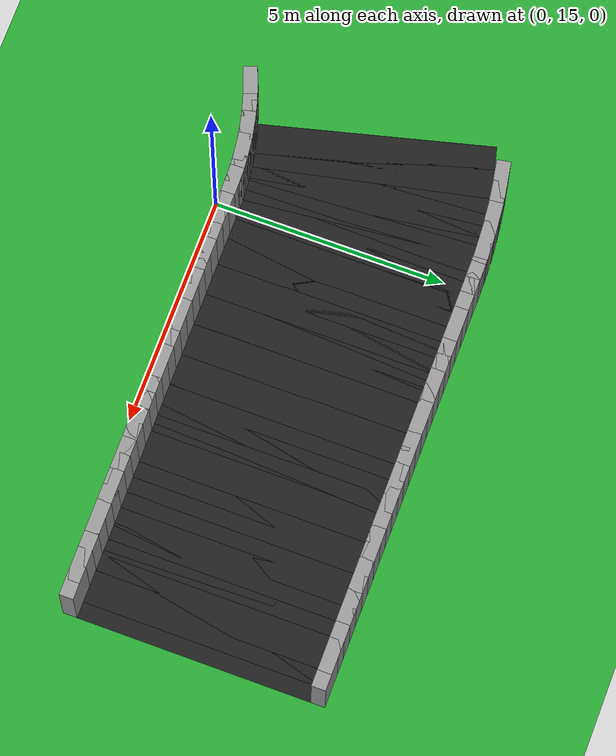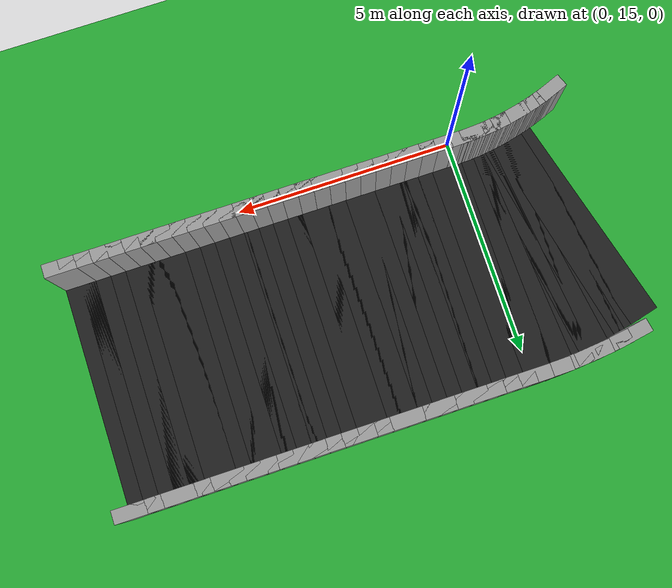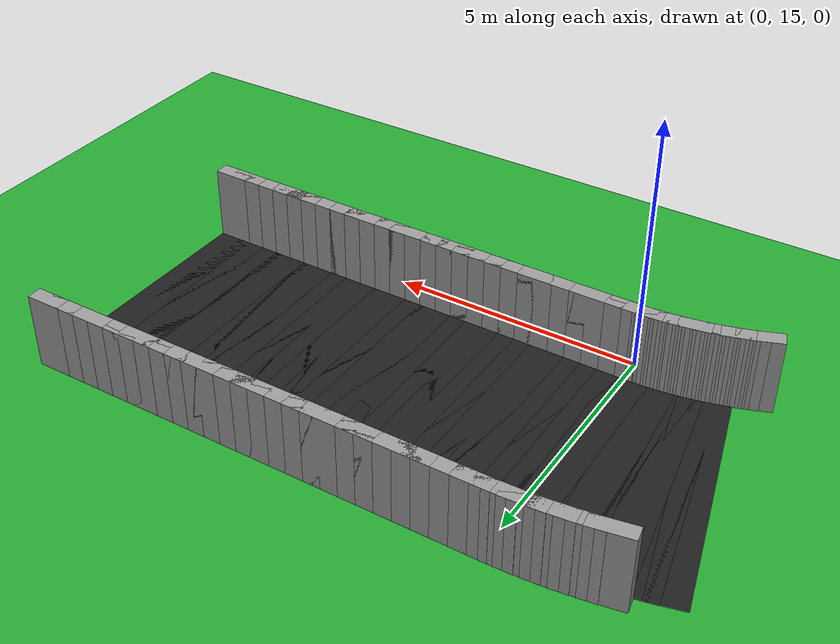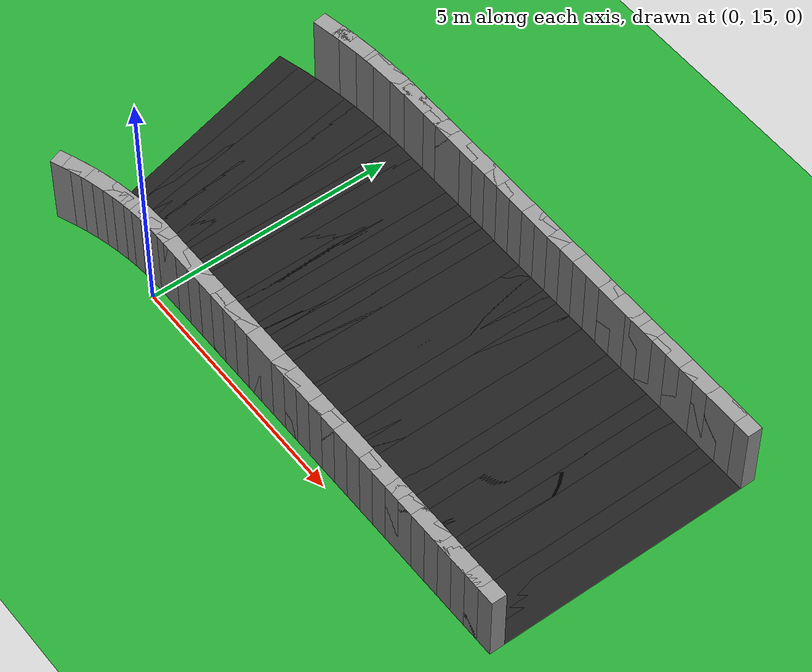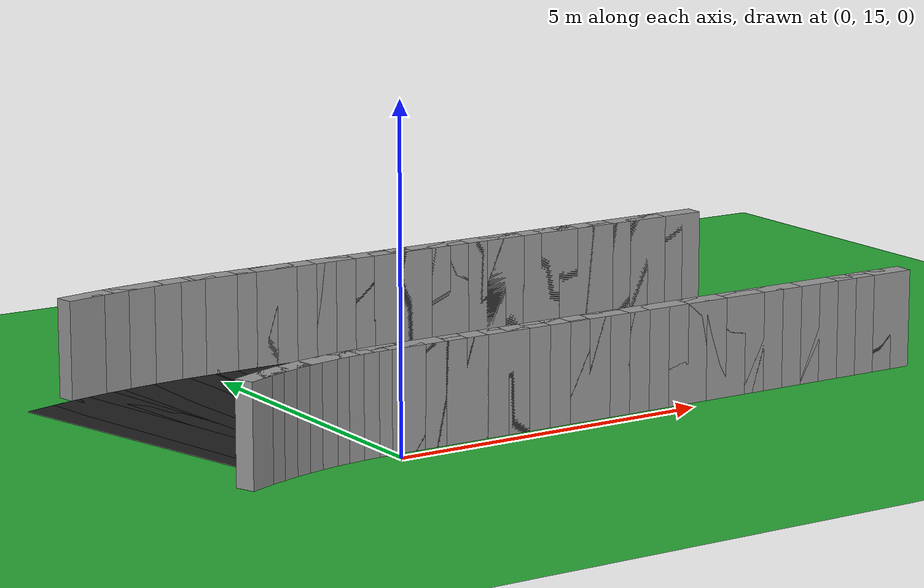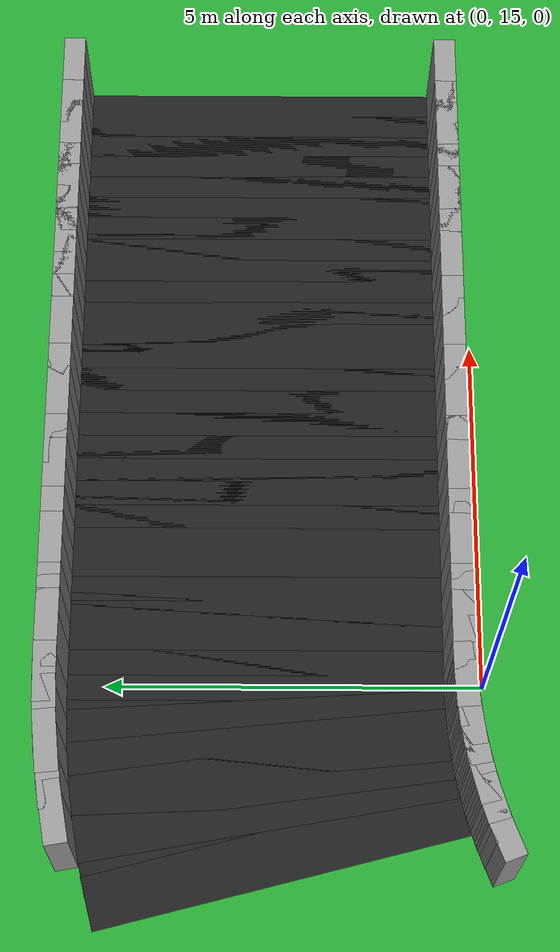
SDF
<sdf version="1.6">
 <world name="loop_stadium">
  <include><uri>model://sun</uri></include>
  <model name="ground_plane">
   <static>true</static>
   <link name="link">
    <collision name="collision">
     <surface><friction><ode><mu>100</mu><mu2>50</mu2></ode></friction></surface>
     <geometry><plane><normal>0 0 1</normal><size>120 120</size></plane></geometry>
    </collision>
    <visual name="visual">
     <geometry><plane><normal>0 0 1</normal><size>120 120</size></plane></geometry>
     <material>
      <script><uri>file://media/materials/scripts/gazebo.material</uri><name>Gazebo/Green</name></script>
     </material>
    </visual>
   </link>
  </model>
  <model name="asphalt_193">
   <static>true</static>
   <pose>8.870 18.001 0.005 0 0 3.14159</pose>
   <link name="link">
    <visual name="visual">
     <geometry><box><size>0.708 5.000 0.010</size></box></geometry>
     <material>
      <script><uri>file://media/materials/scripts/gazebo.material</uri><name>Gazebo/Black</name></script>
     </material>
    </visual>
   </link>
  </model>
  <model name="curbL_193">
   <static>true</static>
   <pose>8.870 15.351 0.750 0 0 3.14159</pose>
   <link name="link">
    <collision name="collision"><geometry><box><size>0.708 0.300 1.500</size></box></geometry></collision>
    <visual name="visual">
     <geometry><box><size>0.708 0.300 1.500</size></box></geometry>
     <material>
      <script><uri>file://media/materials/scripts/gazebo.material</uri><name>Gazebo/Grey</name></script>
     </material>
    </visual>
   </link>
  </model>
  <model name="curbR_193">
   <static>true</static>
   <pose>8.870 20.651 0.750 0 0 3.14159</pose>
   <link name="link">
    <collision name="collision"><geometry><box><size>0.708 0.300 1.500</size></box></geometry></collision>
    <visual name="visual">
     <geometry><box><size>0.708 0.300 1.500</size></box></geometry>
     <material>
      <script><uri>file://media/materials/scripts/gazebo.material</uri><name>Gazebo/Grey</name></script>
     </material>
    </visual>
   </link>
  </model>
  <model name="asphalt_194">
   <static>true</static>
   <pose>8.522 18.001 0.005 0 0 3.14159</pose>
   <link name="link">
    <visual name="visual">
     <geometry><box><size>0.708 5.000 0.010</size></box></geometry>
     <material>
      <script><uri>file://media/materials/scripts/gazebo.material</uri><name>Gazebo/Black</name></script>
     </material>
    </visual>
   </link>
  </model>
  <model name="curbL_194">
   <static>true</static>
   <pose>8.522 15.351 0.750 0 0 3.14159</pose>
   <link name="link">
    <collision name="collision"><geometry><box><size>0.708 0.300 1.500</size></box></geometry></collision>
    <visual name="visual">
     <geometry><box><size>0.708 0.300 1.500</size></box></geometry>
     <material>
      <script><uri>file://media/materials/scripts/gazebo.material</uri><name>Gazebo/Grey</name></script>
     </material>
    </visual>
   </link>
  </model>
  <model name="curbR_194">
   <static>true</static>
   <pose>8.522 20.651 0.750 0 0 3.14159</pose>
   <link name="link">
    <collision name="collision"><geometry><box><size>0.708 0.300 1.500</size></box></geometry></collision>
    <visual name="visual">
     <geometry><box><size>0.708 0.300 1.500</size></box></geometry>
     <material>
      <script><uri>file://media/materials/scripts/gazebo.material</uri><name>Gazebo/Grey</name></script>
     </material>
    </visual>
   </link>
  </model>
  <model name="asphalt_195">
   <static>true</static>
   <pose>8.174 18.001 0.005 0 0 3.14159</pose>
   <link name="link">
    <visual name="visual">
     <geometry><box><size>0.708 5.000 0.010</size></box></geometry>
     <material>
      <script><uri>file://media/materials/scripts/gazebo.material</uri><name>Gazebo/Black</name></script>
     </material>
    </visual>
   </link>
  </model>
  <model name="curbL_195">
   <static>true</static>
   <pose>8.174 15.351 0.750 0 0 3.14159</pose>
   <link name="link">
    <collision name="collision"><geometry><box><size>0.708 0.300 1.500</size></box></geometry></collision>
    <visual name="visual">
     <geometry><box><size>0.708 0.300 1.500</size></box></geometry>
     <material>
      <script><uri>file://media/materials/scripts/gazebo.material</uri><name>Gazebo/Grey</name></script>
     </material>
    </visual>
   </link>
  </model>
  <model name="curbR_195">
   <static>true</static>
   <pose>8.174 20.651 0.750 0 0 3.14159</pose>
   <link name="link">
    <collision name="collision"><geometry><box><size>0.708 0.300 1.500</size></box></geometry></collision>
    <visual name="visual">
     <geometry><box><size>0.708 0.300 1.500</size></box></geometry>
     <material>
      <script><uri>file://media/materials/scripts/gazebo.material</uri><name>Gazebo/Grey</name></script>
     </material>
    </visual>
   </link>
  </model>
  <model name="asphalt_196">
   <static>true</static>
   <pose>7.826 18.001 0.005 0 0 3.14159</pose>
   <link name="link">
    <visual name="visual">
     <geometry><box><size>0.708 5.000 0.010</size></box></geometry>
     <material>
      <script><uri>file://media/materials/scripts/gazebo.material</uri><name>Gazebo/Black</name></script>
     </material>
    </visual>
   </link>
  </model>
  <model name="curbL_196">
   <static>true</static>
   <pose>7.826 15.351 0.750 0 0 3.14159</pose>
   <link name="link">
    <collision name="collision"><geometry><box><size>0.708 0.300 1.500</size></box></geometry></collision>
    <visual name="visual">
     <geometry><box><size>0.708 0.300 1.500</size></box></geometry>
     <material>
      <script><uri>file://media/materials/scripts/gazebo.material</uri><name>Gazebo/Grey</name></script>
     </material>
    </visual>
   </link>
  </model>
  <model name="curbR_196">
   <static>true</static>
   <pose>7.826 20.651 0.750 0 0 3.14159</pose>
   <link name="link">
    <collision name="collision"><geometry><box><size>0.708 0.300 1.500</size></box></geometry></collision>
    <visual name="visual">
     <geometry><box><size>0.708 0.300 1.500</size></box></geometry>
     <material>
      <script><uri>file://media/materials/scripts/gazebo.material</uri><name>Gazebo/Grey</name></script>
     </material>
    </visual>
   </link>
  </model>
  <model name="asphalt_197">
   <static>true</static>
   <pose>7.478 18.001 0.005 0 0 3.14159</pose>
   <link name="link">
    <visual name="visual">
     <geometry><box><size>0.708 5.000 0.010</size></box></geometry>
     <material>
      <script><uri>file://media/materials/scripts/gazebo.material</uri><name>Gazebo/Black</name></script>
     </material>
    </visual>
   </link>
  </model>
  <model name="curbL_197">
   <static>true</static>
   <pose>7.478 15.351 0.750 0 0 3.14159</pose>
   <link name="link">
    <collision name="collision"><geometry><box><size>0.708 0.300 1.500</size></box></geometry></collision>
    <visual name="visual">
     <geometry><box><size>0.708 0.300 1.500</size></box></geometry>
     <material>
      <script><uri>file://media/materials/scripts/gazebo.material</uri><name>Gazebo/Grey</name></script>
     </material>
    </visual>
   </link>
  </model>
  <model name="curbR_197">
   <static>true</static>
   <pose>7.478 20.651 0.750 0 0 3.14159</pose>
   <link name="link">
    <collision name="collision"><geometry><box><size>0.708 0.300 1.500</size></box></geometry></collision>
    <visual name="visual">
     <geometry><box><size>0.708 0.300 1.500</size></box></geometry>
     <material>
      <script><uri>file://media/materials/scripts/gazebo.material</uri><name>Gazebo/Grey</name></script>
     </material>
    </visual>
   </link>
  </model>
  <model name="asphalt_198">
   <static>true</static>
   <pose>7.130 18.001 0.005 0 0 3.14159</pose>
   <link name="link">
    <visual name="visual">
     <geometry><box><size>0.708 5.000 0.010</size></box></geometry>
     <material>
      <script><uri>file://media/materials/scripts/gazebo.material</uri><name>Gazebo/Black</name></script>
     </material>
    </visual>
   </link>
  </model>
  <model name="curbL_198">
   <static>true</static>
   <pose>7.130 15.351 0.750 0 0 3.14159</pose>
   <link name="link">
    <collision name="collision"><geometry><box><size>0.708 0.300 1.500</size></box></geometry></collision>
    <visual name="visual">
     <geometry><box><size>0.708 0.300 1.500</size></box></geometry>
     <material>
      <script><uri>file://media/materials/scripts/gazebo.material</uri><name>Gazebo/Grey</name></script>
     </material>
    </visual>
   </link>
  </model>
  <model name="curbR_198">
   <static>true</static>
   <pose>7.130 20.651 0.750 0 0 3.14159</pose>
   <link name="link">
    <collision name="collision"><geometry><box><size>0.708 0.300 1.500</size></box></geometry></collision>
    <visual name="visual">
     <geometry><box><size>0.708 0.300 1.500</size></box></geometry>
     <material>
      <script><uri>file://media/materials/scripts/gazebo.material</uri><name>Gazebo/Grey</name></script>
     </material>
    </visual>
   </link>
  </model>
  <model name="asphalt_199">
   <static>true</static>
   <pose>6.783 18.001 0.005 0 0 3.14159</pose>
   <link name="link">
    <visual name="visual">
     <geometry><box><size>0.708 5.000 0.010</size></box></geometry>
     <material>
      <script><uri>file://media/materials/scripts/gazebo.material</uri><name>Gazebo/Black</name></script>
     </material>
    </visual>
   </link>
  </model>
  <model name="curbL_199">
   <static>true</static>
   <pose>6.783 15.351 0.750 0 0 3.14159</pose>
   <link name="link">
    <collision name="collision"><geometry><box><size>0.708 0.300 1.500</size></box></geometry></collision>
    <visual name="visual">
     <geometry><box><size>0.708 0.300 1.500</size></box></geometry>
     <material>
      <script><uri>file://media/materials/scripts/gazebo.material</uri><name>Gazebo/Grey</name></script>
     </material>
    </visual>
   </link>
  </model>
  <model name="curbR_199">
   <static>true</static>
   <pose>6.783 20.651 0.750 0 0 3.14159</pose>
   <link name="link">
    <collision name="collision"><geometry><box><size>0.708 0.300 1.500</size></box></geometry></collision>
    <visual name="visual">
     <geometry><box><size>0.708 0.300 1.500</size></box></geometry>
     <material>
      <script><uri>file://media/materials/scripts/gazebo.material</uri><name>Gazebo/Grey</name></script>
     </material>
    </visual>
   </link>
  </model>
  <model name="asphalt_200">
   <static>true</static>
   <pose>6.435 18.001 0.005 0 0 3.14159</pose>
   <link name="link">
    <visual name="visual">
     <geometry><box><size>0.708 5.000 0.010</size></box></geometry>
     <material>
      <script><uri>file://media/materials/scripts/gazebo.material</uri><name>Gazebo/Black</name></script>
     </material>
    </visual>
   </link>
  </model>
  <model name="curbL_200">
   <static>true</static>
   <pose>6.435 15.351 0.750 0 0 3.14159</pose>
   <link name="link">
    <collision name="collision"><geometry><box><size>0.708 0.300 1.500</size></box></geometry></collision>
    <visual name="visual">
     <geometry><box><size>0.708 0.300 1.500</size></box></geometry>
     <material>
      <script><uri>file://media/materials/scripts/gazebo.material</uri><name>Gazebo/Grey</name></script>
     </material>
    </visual>
   </link>
  </model>
  <model name="curbR_200">
   <static>true</static>
   <pose>6.435 20.651 0.750 0 0 3.14159</pose>
   <link name="link">
    <collision name="collision"><geometry><box><size>0.708 0.300 1.500</size></box></geometry></collision>
    <visual name="visual">
     <geometry><box><size>0.708 0.300 1.500</size></box></geometry>
     <material>
      <script><uri>file://media/materials/scripts/gazebo.material</uri><name>Gazebo/Grey</name></script>
     </material>
    </visual>
   </link>
  </model>
  <model name="asphalt_201">
   <static>true</static>
   <pose>6.087 18.001 0.005 0 0 3.14159</pose>
   <link name="link">
    <visual name="visual">
     <geometry><box><size>0.708 5.000 0.010</size></box></geometry>
     <material>
      <script><uri>file://media/materials/scripts/gazebo.material</uri><name>Gazebo/Black</name></script>
     </material>
    </visual>
   </link>
  </model>
  <model name="curbL_201">
   <static>true</static>
   <pose>6.087 15.351 0.750 0 0 3.14159</pose>
   <link name="link">
    <collision name="collision"><geometry><box><size>0.708 0.300 1.500</size></box></geometry></collision>
    <visual name="visual">
     <geometry><box><size>0.708 0.300 1.500</size></box></geometry>
     <material>
      <script><uri>file://media/materials/scripts/gazebo.material</uri><name>Gazebo/Grey</name></script>
     </material>
    </visual>
   </link>
  </model>
  <model name="curbR_201">
   <static>true</static>
   <pose>6.087 20.651 0.750 0 0 3.14159</pose>
   <link name="link">
    <collision name="collision"><geometry><box><size>0.708 0.300 1.500</size></box></geometry></collision>
    <visual name="visual">
     <geometry><box><size>0.708 0.300 1.500</size></box></geometry>
     <material>
      <script><uri>file://media/materials/scripts/gazebo.material</uri><name>Gazebo/Grey</name></script>
     </material>
    </visual>
   </link>
  </model>
  <model name="asphalt_202">
   <static>true</static>
   <pose>5.739 18.001 0.005 0 0 3.14159</pose>
   <link name="link">
    <visual name="visual">
     <geometry><box><size>0.708 5.000 0.010</size></box></geometry>
     <material>
      <script><uri>file://media/materials/scripts/gazebo.material</uri><name>Gazebo/Black</name></script>
     </material>
    </visual>
   </link>
  </model>
  <model name="curbL_202">
   <static>true</static>
   <pose>5.739 15.351 0.750 0 0 3.14159</pose>
   <link name="link">
    <collision name="collision"><geometry><box><size>0.708 0.300 1.500</size></box></geometry></collision>
    <visual name="visual">
     <geometry><box><size>0.708 0.300 1.500</size></box></geometry>
     <material>
      <script><uri>file://media/materials/scripts/gazebo.material</uri><name>Gazebo/Grey</name></script>
     </material>
    </visual>
   </link>
  </model>
  <model name="curbR_202">
   <static>true</static>
   <pose>5.739 20.651 0.750 0 0 3.14159</pose>
   <link name="link">
    <collision name="collision"><geometry><box><size>0.708 0.300 1.500</size></box></geometry></collision>
    <visual name="visual">
     <geometry><box><size>0.708 0.300 1.500</size></box></geometry>
     <material>
      <script><uri>file://media/materials/scripts/gazebo.material</uri><name>Gazebo/Grey</name></script>
     </material>
    </visual>
   </link>
  </model>
  <model name="asphalt_203">
   <static>true</static>
   <pose>5.391 18.001 0.005 0 0 3.14159</pose>
   <link name="link">
    <visual name="visual">
     <geometry><box><size>0.708 5.000 0.010</size></box></geometry>
     <material>
      <script><uri>file://media/materials/scripts/gazebo.material</uri><name>Gazebo/Black</name></script>
     </material>
    </visual>
   </link>
  </model>
  <model name="curbL_203">
   <static>true</static>
   <pose>5.391 15.351 0.750 0 0 3.14159</pose>
   <link name="link">
    <collision name="collision"><geometry><box><size>0.708 0.300 1.500</size></box></geometry></collision>
    <visual name="visual">
     <geometry><box><size>0.708 0.300 1.500</size></box></geometry>
     <material>
      <script><uri>file://media/materials/scripts/gazebo.material</uri><name>Gazebo/Grey</name></script>
     </material>
    </visual>
   </link>
  </model>
  <model name="curbR_203">
   <static>true</static>
   <pose>5.391 20.651 0.750 0 0 3.14159</pose>
   <link name="link">
    <collision name="collision"><geometry><box><size>0.708 0.300 1.500</size></box></geometry></collision>
    <visual name="visual">
     <geometry><box><size>0.708 0.300 1.500</size></box></geometry>
     <material>
      <script><uri>file://media/materials/scripts/gazebo.material</uri><name>Gazebo/Grey</name></script>
     </material>
    </visual>
   </link>
  </model>
  <model name="asphalt_204">
   <static>true</static>
   <pose>5.043 18.001 0.005 0 0 3.14159</pose>
   <link name="link">
    <visual name="visual">
     <geometry><box><size>0.708 5.000 0.010</size></box></geometry>
     <material>
      <script><uri>file://media/materials/scripts/gazebo.material</uri><name>Gazebo/Black</name></script>
     </material>
    </visual>
   </link>
  </model>
  <model name="curbL_204">
   <static>true</static>
   <pose>5.043 15.351 0.750 0 0 3.14159</pose>
   <link name="link">
    <collision name="collision"><geometry><box><size>0.708 0.300 1.500</size></box></geometry></collision>
    <visual name="visual">
     <geometry><box><size>0.708 0.300 1.500</size></box></geometry>
     <material>
      <script><uri>file://media/materials/scripts/gazebo.material</uri><name>Gazebo/Grey</name></script>
     </material>
    </visual>
   </link>
  </model>
  <model name="curbR_204">
   <static>true</static>
   <pose>5.043 20.651 0.750 0 0 3.14159</pose>
   <link name="link">
    <collision name="collision"><geometry><box><size>0.708 0.300 1.500</size></box></geometry></collision>
    <visual name="visual">
     <geometry><box><size>0.708 0.300 1.500</size></box></geometry>
     <material>
      <script><uri>file://media/materials/scripts/gazebo.material</uri><name>Gazebo/Grey</name></script>
     </material>
    </visual>
   </link>
  </model>
  <model name="asphalt_205">
   <static>true</static>
   <pose>4.696 18.001 0.005 0 0 3.14159</pose>
   <link name="link">
    <visual name="visual">
     <geometry><box><size>0.708 5.000 0.010</size></box></geometry>
     <material>
      <script><uri>file://media/materials/scripts/gazebo.material</uri><name>Gazebo/Black</name></script>
     </material>
    </visual>
   </link>
  </model>
  <model name="curbL_205">
   <static>true</static>
   <pose>4.696 15.351 0.750 0 0 3.14159</pose>
   <link name="link">
    <collision name="collision"><geometry><box><size>0.708 0.300 1.500</size></box></geometry></collision>
    <visual name="visual">
     <geometry><box><size>0.708 0.300 1.500</size></box></geometry>
     <material>
      <script><uri>file://media/materials/scripts/gazebo.material</uri><name>Gazebo/Grey</name></script>
     </material>
    </visual>
   </link>
  </model>
  <model name="curbR_205">
   <static>true</static>
   <pose>4.696 20.651 0.750 0 0 3.14159</pose>
   <link name="link">
    <collision name="collision"><geometry><box><size>0.708 0.300 1.500</size></box></geometry></collision>
    <visual name="visual">
     <geometry><box><size>0.708 0.300 1.500</size></box></geometry>
     <material>
      <script><uri>file://media/materials/scripts/gazebo.material</uri><name>Gazebo/Grey</name></script>
     </material>
    </visual>
   </link>
  </model>
  <model name="asphalt_206">
   <static>true</static>
   <pose>4.348 18.001 0.005 0 0 3.14159</pose>
   <link name="link">
    <visual name="visual">
     <geometry><box><size>0.708 5.000 0.010</size></box></geometry>
     <material>
      <script><uri>file://media/materials/scripts/gazebo.material</uri><name>Gazebo/Black</name></script>
     </material>
    </visual>
   </link>
  </model>
  <model name="curbL_206">
   <static>true</static>
   <pose>4.348 15.351 0.750 0 0 3.14159</pose>
   <link name="link">
    <collision name="collision"><geometry><box><size>0.708 0.300 1.500</size></box></geometry></collision>
    <visual name="visual">
     <geometry><box><size>0.708 0.300 1.500</size></box></geometry>
     <material>
      <script><uri>file://media/materials/scripts/gazebo.material</uri><name>Gazebo/Grey</name></script>
     </material>
    </visual>
   </link>
  </model>
  <model name="curbR_206">
   <static>true</static>
   <pose>4.348 20.651 0.750 0 0 3.14159</pose>
   <link name="link">
    <collision name="collision"><geometry><box><size>0.708 0.300 1.500</size></box></geometry></collision>
    <visual name="visual">
     <geometry><box><size>0.708 0.300 1.500</size></box></geometry>
     <material>
      <script><uri>file://media/materials/scripts/gazebo.material</uri><name>Gazebo/Grey</name></script>
     </material>
    </visual>
   </link>
  </model>
  <model name="asphalt_207">
   <static>true</static>
   <pose>4.000 18.001 0.005 0 0 3.14159</pose>
   <link name="link">
    <visual name="visual">
     <geometry><box><size>0.708 5.000 0.010</size></box></geometry>
     <material>
      <script><uri>file://media/materials/scripts/gazebo.material</uri><name>Gazebo/Black</name></script>
     </material>
    </visual>
   </link>
  </model>
  <model name="curbL_207">
   <static>true</static>
   <pose>4.000 15.351 0.750 0 0 3.14159</pose>
   <link name="link">
    <collision name="collision"><geometry><box><size>0.708 0.300 1.500</size></box></geometry></collision>
    <visual name="visual">
     <geometry><box><size>0.708 0.300 1.500</size></box></geometry>
     <material>
      <script><uri>file://media/materials/scripts/gazebo.material</uri><name>Gazebo/Grey</name></script>
     </material>
    </visual>
   </link>
  </model>
  <model name="curbR_207">
   <static>true</static>
   <pose>4.000 20.651 0.750 0 0 3.14159</pose>
   <link name="link">
    <collision name="collision"><geometry><box><size>0.708 0.300 1.500</size></box></geometry></collision>
    <visual name="visual">
     <geometry><box><size>0.708 0.300 1.500</size></box></geometry>
     <material>
      <script><uri>file://media/materials/scripts/gazebo.material</uri><name>Gazebo/Grey</name></script>
     </material>
    </visual>
   </link>
  </model>
  <model name="asphalt_208">
   <static>true</static>
   <pose>3.652 18.001 0.005 0 0 3.14159</pose>
   <link name="link">
    <visual name="visual">
     <geometry><box><size>0.708 5.000 0.010</size></box></geometry>
     <material>
      <script><uri>file://media/materials/scripts/gazebo.material</uri><name>Gazebo/Black</name></script>
     </material>
    </visual>
   </link>
  </model>
  <model name="curbL_208">
   <static>true</static>
   <pose>3.652 15.351 0.750 0 0 3.14159</pose>
   <link name="link">
    <collision name="collision"><geometry><box><size>0.708 0.300 1.500</size></box></geometry></collision>
    <visual name="visual">
     <geometry><box><size>0.708 0.300 1.500</size></box></geometry>
     <material>
      <script><uri>file://media/materials/scripts/gazebo.material</uri><name>Gazebo/Grey</name></script>
     </material>
    </visual>
   </link>
  </model>
  <model name="curbR_208">
   <static>true</static>
   <pose>3.652 20.651 0.750 0 0 3.14159</pose>
   <link name="link">
    <collision name="collision"><geometry><box><size>0.708 0.300 1.500</size></box></geometry></collision>
    <visual name="visual">
     <geometry><box><size>0.708 0.300 1.500</size></box></geometry>
     <material>
      <script><uri>file://media/materials/scripts/gazebo.material</uri><name>Gazebo/Grey</name></script>
     </material>
    </visual>
   </link>
  </model>
  <model name="asphalt_209">
   <static>true</static>
   <pose>3.304 18.001 0.005 0 0 3.14159</pose>
   <link name="link">
    <visual name="visual">
     <geometry><box><size>0.708 5.000 0.010</size></box></geometry>
     <material>
      <script><uri>file://media/materials/scripts/gazebo.material</uri><name>Gazebo/Black</name></script>
     </material>
    </visual>
   </link>
  </model>
  <model name="curbL_209">
   <static>true</static>
   <pose>3.304 15.351 0.750 0 0 3.14159</pose>
   <link name="link">
    <collision name="collision"><geometry><box><size>0.708 0.300 1.500</size></box></geometry></collision>
    <visual name="visual">
     <geometry><box><size>0.708 0.300 1.500</size></box></geometry>
     <material>
      <script><uri>file://media/materials/scripts/gazebo.material</uri><name>Gazebo/Grey</name></script>
     </material>
    </visual>
   </link>
  </model>
  <model name="curbR_209">
   <static>true</static>
   <pose>3.304 20.651 0.750 0 0 3.14159</pose>
   <link name="link">
    <collision name="collision"><geometry><box><size>0.708 0.300 1.500</size></box></geometry></collision>
    <visual name="visual">
     <geometry><box><size>0.708 0.300 1.500</size></box></geometry>
     <material>
      <script><uri>file://media/materials/scripts/gazebo.material</uri><name>Gazebo/Grey</name></script>
     </material>
    </visual>
   </link>
  </model>
  <model name="asphalt_210">
   <static>true</static>
   <pose>2.957 18.001 0.005 0 0 3.14159</pose>
   <link name="link">
    <visual name="visual">
     <geometry><box><size>0.708 5.000 0.010</size></box></geometry>
     <material>
      <script><uri>file://media/materials/scripts/gazebo.material</uri><name>Gazebo/Black</name></script>
     </material>
    </visual>
   </link>
  </model>
  <model name="curbL_210">
   <static>true</static>
   <pose>2.957 15.351 0.750 0 0 3.14159</pose>
   <link name="link">
    <collision name="collision"><geometry><box><size>0.708 0.300 1.500</size></box></geometry></collision>
    <visual name="visual">
     <geometry><box><size>0.708 0.300 1.500</size></box></geometry>
     <material>
      <script><uri>file://media/materials/scripts/gazebo.material</uri><name>Gazebo/Grey</name></script>
     </material>
    </visual>
   </link>
  </model>
  <model name="curbR_210">
   <static>true</static>
   <pose>2.957 20.651 0.750 0 0 3.14159</pose>
   <link name="link">
    <collision name="collision"><geometry><box><size>0.708 0.300 1.500</size></box></geometry></collision>
    <visual name="visual">
     <geometry><box><size>0.708 0.300 1.500</size></box></geometry>
     <material>
      <script><uri>file://media/materials/scripts/gazebo.material</uri><name>Gazebo/Grey</name></script>
     </material>
    </visual>
   </link>
  </model>
  <model name="asphalt_211">
   <static>true</static>
   <pose>2.609 18.001 0.005 0 0 3.14159</pose>
   <link name="link">
    <visual name="visual">
     <geometry><box><size>0.708 5.000 0.010</size></box></geometry>
     <material>
      <script><uri>file://media/materials/scripts/gazebo.material</uri><name>Gazebo/Black</name></script>
     </material>
    </visual>
   </link>
  </model>
  <model name="curbL_211">
   <static>true</static>
   <pose>2.609 15.351 0.750 0 0 3.14159</pose>
   <link name="link">
    <collision name="collision"><geometry><box><size>0.708 0.300 1.500</size></box></geometry></collision>
    <visual name="visual">
     <geometry><box><size>0.708 0.300 1.500</size></box></geometry>
     <material>
      <script><uri>file://media/materials/scripts/gazebo.material</uri><name>Gazebo/Grey</name></script>
     </material>
    </visual>
   </link>
  </model>
  <model name="curbR_211">
   <static>true</static>
   <pose>2.609 20.651 0.750 0 0 3.14159</pose>
   <link name="link">
    <collision name="collision"><geometry><box><size>0.708 0.300 1.500</size></box></geometry></collision>
    <visual name="visual">
     <geometry><box><size>0.708 0.300 1.500</size></box></geometry>
     <material>
      <script><uri>file://media/materials/scripts/gazebo.material</uri><name>Gazebo/Grey</name></script>
     </material>
    </visual>
   </link>
  </model>
  <model name="asphalt_212">
   <static>true</static>
   <pose>2.261 18.001 0.005 0 0 3.14159</pose>
   <link name="link">
    <visual name="visual">
     <geometry><box><size>0.708 5.000 0.010</size></box></geometry>
     <material>
      <script><uri>file://media/materials/scripts/gazebo.material</uri><name>Gazebo/Black</name></script>
     </material>
    </visual>
   </link>
  </model>
  <model name="curbL_212">
   <static>true</static>
   <pose>2.261 15.351 0.750 0 0 3.14159</pose>
   <link name="link">
    <collision name="collision"><geometry><box><size>0.708 0.300 1.500</size></box></geometry></collision>
    <visual name="visual">
     <geometry><box><size>0.708 0.300 1.500</size></box></geometry>
     <material>
      <script><uri>file://media/materials/scripts/gazebo.material</uri><name>Gazebo/Grey</name></script>
     </material>
    </visual>
   </link>
  </model>
  <model name="curbR_212">
   <static>true</static>
   <pose>2.261 20.651 0.750 0 0 3.14159</pose>
   <link name="link">
    <collision name="collision"><geometry><box><size>0.708 0.300 1.500</size></box></geometry></collision>
    <visual name="visual">
     <geometry><box><size>0.708 0.300 1.500</size></box></geometry>
     <material>
      <script><uri>file://media/materials/scripts/gazebo.material</uri><name>Gazebo/Grey</name></script>
     </material>
    </visual>
   </link>
  </model>
  <model name="asphalt_213">
   <static>true</static>
   <pose>1.913 18.001 0.005 0 0 3.14159</pose>
   <link name="link">
    <visual name="visual">
     <geometry><box><size>0.708 5.000 0.010</size></box></geometry>
     <material>
      <script><uri>file://media/materials/scripts/gazebo.material</uri><name>Gazebo/Black</name></script>
     </material>
    </visual>
   </link>
  </model>
  <model name="curbL_213">
   <static>true</static>
   <pose>1.913 15.351 0.750 0 0 3.14159</pose>
   <link name="link">
    <collision name="collision"><geometry><box><size>0.708 0.300 1.500</size></box></geometry></collision>
    <visual name="visual">
     <geometry><box><size>0.708 0.300 1.500</size></box></geometry>
     <material>
      <script><uri>file://media/materials/scripts/gazebo.material</uri><name>Gazebo/Grey</name></script>
     </material>
    </visual>
   </link>
  </model>
  <model name="curbR_213">
   <static>true</static>
   <pose>1.913 20.651 0.750 0 0 3.14159</pose>
   <link name="link">
    <collision name="collision"><geometry><box><size>0.708 0.300 1.500</size></box></geometry></collision>
    <visual name="visual">
     <geometry><box><size>0.708 0.300 1.500</size></box></geometry>
     <material>
      <script><uri>file://media/materials/scripts/gazebo.material</uri><name>Gazebo/Grey</name></script>
     </material>
    </visual>
   </link>
  </model>
  <model name="asphalt_214">
   <static>true</static>
   <pose>1.565 18.001 0.005 0 0 3.14159</pose>
   <link name="link">
    <visual name="visual">
     <geometry><box><size>0.708 5.000 0.010</size></box></geometry>
     <material>
      <script><uri>file://media/materials/scripts/gazebo.material</uri><name>Gazebo/Black</name></script>
     </material>
    </visual>
   </link>
  </model>
  <model name="curbL_214">
   <static>true</static>
   <pose>1.565 15.351 0.750 0 0 3.14159</pose>
   <link name="link">
    <collision name="collision"><geometry><box><size>0.708 0.300 1.500</size></box></geometry></collision>
    <visual name="visual">
     <geometry><box><size>0.708 0.300 1.500</size></box></geometry>
     <material>
      <script><uri>file://media/materials/scripts/gazebo.material</uri><name>Gazebo/Grey</name></script>
     </material>
    </visual>
   </link>
  </model>
  <model name="curbR_214">
   <static>true</static>
   <pose>1.565 20.651 0.750 0 0 3.14159</pose>
   <link name="link">
    <collision name="collision"><geometry><box><size>0.708 0.300 1.500</size></box></geometry></collision>
    <visual name="visual">
     <geometry><box><size>0.708 0.300 1.500</size></box></geometry>
     <material>
      <script><uri>file://media/materials/scripts/gazebo.material</uri><name>Gazebo/Grey</name></script>
     </material>
    </visual>
   </link>
  </model>
  <model name="asphalt_215">
   <static>true</static>
   <pose>1.217 18.001 0.005 0 0 3.14159</pose>
   <link name="link">
    <visual name="visual">
     <geometry><box><size>0.708 5.000 0.010</size></box></geometry>
     <material>
      <script><uri>file://media/materials/scripts/gazebo.material</uri><name>Gazebo/Black</name></script>
     </material>
    </visual>
   </link>
  </model>
  <model name="curbL_215">
   <static>true</static>
   <pose>1.217 15.351 0.750 0 0 3.14159</pose>
   <link name="link">
    <collision name="collision"><geometry><box><size>0.708 0.300 1.500</size></box></geometry></collision>
    <visual name="visual">
     <geometry><box><size>0.708 0.300 1.500</size></box></geometry>
     <material>
      <script><uri>file://media/materials/scripts/gazebo.material</uri><name>Gazebo/Grey</name></script>
     </material>
    </visual>
   </link>
  </model>
  <model name="curbR_215">
   <static>true</static>
   <pose>1.217 20.651 0.750 0 0 3.14159</pose>
   <link name="link">
    <collision name="collision"><geometry><box><size>0.708 0.300 1.500</size></box></geometry></collision>
    <visual name="visual">
     <geometry><box><size>0.708 0.300 1.500</size></box></geometry>
     <material>
      <script><uri>file://media/materials/scripts/gazebo.material</uri><name>Gazebo/Grey</name></script>
     </material>
    </visual>
   </link>
  </model>
  <model name="asphalt_216">
   <static>true</static>
   <pose>0.870 18.001 0.005 0 0 3.14159</pose>
   <link name="link">
    <visual name="visual">
     <geometry><box><size>0.708 5.000 0.010</size></box></geometry>
     <material>
      <script><uri>file://media/materials/scripts/gazebo.material</uri><name>Gazebo/Black</name></script>
     </material>
    </visual>
   </link>
  </model>
  <model name="curbL_216">
   <static>true</static>
   <pose>0.870 15.351 0.750 0 0 3.14159</pose>
   <link name="link">
    <collision name="collision"><geometry><box><size>0.708 0.300 1.500</size></box></geometry></collision>
    <visual name="visual">
     <geometry><box><size>0.708 0.300 1.500</size></box></geometry>
     <material>
      <script><uri>file://media/materials/scripts/gazebo.material</uri><name>Gazebo/Grey</name></script>
     </material>
    </visual>
   </link>
  </model>
  <model name="curbR_216">
   <static>true</static>
   <pose>0.870 20.651 0.750 0 0 3.14159</pose>
   <link name="link">
    <collision name="collision"><geometry><box><size>0.708 0.300 1.500</size></box></geometry></collision>
    <visual name="visual">
     <geometry><box><size>0.708 0.300 1.500</size></box></geometry>
     <material>
      <script><uri>file://media/materials/scripts/gazebo.material</uri><name>Gazebo/Grey</name></script>
     </material>
    </visual>
   </link>
  </model>
  <model name="asphalt_217">
   <static>true</static>
   <pose>0.522 18.001 0.005 0 0 3.14159</pose>
   <link name="link">
    <visual name="visual">
     <geometry><box><size>0.708 5.000 0.010</size></box></geometry>
     <material>
      <script><uri>file://media/materials/scripts/gazebo.material</uri><name>Gazebo/Black</name></script>
     </material>
    </visual>
   </link>
  </model>
  <model name="curbL_217">
   <static>true</static>
   <pose>0.522 15.351 0.750 0 0 3.14159</pose>
   <link name="link">
    <collision name="collision"><geometry><box><size>0.708 0.300 1.500</size></box></geometry></collision>
    <visual name="visual">
     <geometry><box><size>0.708 0.300 1.500</size></box></geometry>
     <material>
      <script><uri>file://media/materials/scripts/gazebo.material</uri><name>Gazebo/Grey</name></script>
     </material>
    </visual>
   </link>
  </model>
  <model name="curbR_217">
   <static>true</static>
   <pose>0.522 20.651 0.750 0 0 3.14159</pose>
   <link name="link">
    <collision name="collision"><geometry><box><size>0.708 0.300 1.500</size></box></geometry></collision>
    <visual name="visual">
     <geometry><box><size>0.708 0.300 1.500</size></box></geometry>
     <material>
      <script><uri>file://media/materials/scripts/gazebo.material</uri><name>Gazebo/Grey</name></script>
     </material>
    </visual>
   </link>
  </model>
  <model name="asphalt_218">
   <static>true</static>
   <pose>0.174 18.001 0.005 0 0 3.14159</pose>
   <link name="link">
    <visual name="visual">
     <geometry><box><size>0.708 5.000 0.010</size></box></geometry>
     <material>
      <script><uri>file://media/materials/scripts/gazebo.material</uri><name>Gazebo/Black</name></script>
     </material>
    </visual>
   </link>
  </model>
  <model name="curbL_218">
   <static>true</static>
   <pose>0.174 15.351 0.750 0 0 3.14159</pose>
   <link name="link">
    <collision name="collision"><geometry><box><size>0.708 0.300 1.500</size></box></geometry></collision>
    <visual name="visual">
     <geometry><box><size>0.708 0.300 1.500</size></box></geometry>
     <material>
      <script><uri>file://media/materials/scripts/gazebo.material</uri><name>Gazebo/Grey</name></script>
     </material>
    </visual>
   </link>
  </model>
  <model name="curbR_218">
   <static>true</static>
   <pose>0.174 20.651 0.750 0 0 3.14159</pose>
   <link name="link">
    <collision name="collision"><geometry><box><size>0.708 0.300 1.500</size></box></geometry></collision>
    <visual name="visual">
     <geometry><box><size>0.708 0.300 1.500</size></box></geometry>
     <material>
      <script><uri>file://media/materials/scripts/gazebo.material</uri><name>Gazebo/Grey</name></script>
     </material>
    </visual>
   </link>
  </model>
  <model name="asphalt_219">
   <static>true</static>
   <pose>-0.175 17.998 0.005 0 0 -3.12220</pose>
   <link name="link">
    <visual name="visual">
     <geometry><box><size>0.709 5.000 0.010</size></box></geometry>
     <material>
      <script><uri>file://media/materials/scripts/gazebo.material</uri><name>Gazebo/Black</name></script>
     </material>
    </visual>
   </link>
  </model>
  <model name="curbL_219">
   <static>true</static>
   <pose>-0.123 15.349 0.750 0 0 -3.12220</pose>
   <link name="link">
    <collision name="collision"><geometry><box><size>0.606 0.300 1.500</size></box></geometry></collision>
    <visual name="visual">
     <geometry><box><size>0.606 0.300 1.500</size></box></geometry>
     <material>
      <script><uri>file://media/materials/scripts/gazebo.material</uri><name>Gazebo/Grey</name></script>
     </material>
    </visual>
   </link>
  </model>
  <model name="curbR_219">
   <static>true</static>
   <pose>-0.226 20.647 0.750 0 0 -3.12220</pose>
   <link name="link">
    <collision name="collision"><geometry><box><size>0.812 0.300 1.500</size></box></geometry></collision>
    <visual name="visual">
     <geometry><box><size>0.812 0.300 1.500</size></box></geometry>
     <material>
      <script><uri>file://media/materials/scripts/gazebo.material</uri><name>Gazebo/Grey</name></script>
     </material>
    </visual>
   </link>
  </model>
  <model name="asphalt_220">
   <static>true</static>
   <pose>-0.523 17.984 0.005 0 0 -3.08342</pose>
   <link name="link">
    <visual name="visual">
     <geometry><box><size>0.709 5.000 0.010</size></box></geometry>
     <material>
      <script><uri>file://media/materials/scripts/gazebo.material</uri><name>Gazebo/Black</name></script>
     </material>
    </visual>
   </link>
  </model>
  <model name="curbL_220">
   <static>true</static>
   <pose>-0.369 15.339 0.750 0 0 -3.08342</pose>
   <link name="link">
    <collision name="collision"><geometry><box><size>0.606 0.300 1.500</size></box></geometry></collision>
    <visual name="visual">
     <geometry><box><size>0.606 0.300 1.500</size></box></geometry>
     <material>
      <script><uri>file://media/materials/scripts/gazebo.material</uri><name>Gazebo/Grey</name></script>
     </material>
    </visual>
   </link>
  </model>
  <model name="curbR_220">
   <static>true</static>
   <pose>-0.677 20.629 0.750 0 0 -3.08342</pose>
   <link name="link">
    <collision name="collision"><geometry><box><size>0.812 0.300 1.500</size></box></geometry></collision>
    <visual name="visual">
     <geometry><box><size>0.812 0.300 1.500</size></box></geometry>
     <material>
      <script><uri>file://media/materials/scripts/gazebo.material</uri><name>Gazebo/Grey</name></script>
     </material>
    </visual>
   </link>
  </model>
  <model name="asphalt_221">
   <static>true</static>
   <pose>-0.871 17.957 0.005 0 0 -3.04463</pose>
   <link name="link">
    <visual name="visual">
     <geometry><box><size>0.709 5.000 0.010</size></box></geometry>
     <material>
      <script><uri>file://media/materials/scripts/gazebo.material</uri><name>Gazebo/Black</name></script>
     </material>
    </visual>
   </link>
  </model>
  <model name="curbL_221">
   <static>true</static>
   <pose>-0.615 15.320 0.750 0 0 -3.04463</pose>
   <link name="link">
    <collision name="collision"><geometry><box><size>0.606 0.300 1.500</size></box></geometry></collision>
    <visual name="visual">
     <geometry><box><size>0.606 0.300 1.500</size></box></geometry>
     <material>
      <script><uri>file://media/materials/scripts/gazebo.material</uri><name>Gazebo/Grey</name></script>
     </material>
    </visual>
   </link>
  </model>
  <model name="curbR_221">
   <static>true</static>
   <pose>-1.128 20.594 0.750 0 0 -3.04463</pose>
   <link name="link">
    <collision name="collision"><geometry><box><size>0.812 0.300 1.500</size></box></geometry></collision>
    <visual name="visual">
     <geometry><box><size>0.812 0.300 1.500</size></box></geometry>
     <material>
      <script><uri>file://media/materials/scripts/gazebo.material</uri><name>Gazebo/Grey</name></script>
     </material>
    </visual>
   </link>
  </model>
  <model name="asphalt_222">
   <static>true</static>
   <pose>-1.218 17.917 0.005 0 0 -3.00584</pose>
   <link name="link">
    <visual name="visual">
     <geometry><box><size>0.709 5.000 0.010</size></box></geometry>
     <material>
      <script><uri>file://media/materials/scripts/gazebo.material</uri><name>Gazebo/Black</name></script>
     </material>
    </visual>
   </link>
  </model>
  <model name="curbL_222">
   <static>true</static>
   <pose>-0.859 15.292 0.750 0 0 -3.00584</pose>
   <link name="link">
    <collision name="collision"><geometry><box><size>0.606 0.300 1.500</size></box></geometry></collision>
    <visual name="visual">
     <geometry><box><size>0.606 0.300 1.500</size></box></geometry>
     <material>
      <script><uri>file://media/materials/scripts/gazebo.material</uri><name>Gazebo/Grey</name></script>
     </material>
    </visual>
   </link>
  </model>
  <model name="curbR_222">
   <static>true</static>
   <pose>-1.576 20.542 0.750 0 0 -3.00584</pose>
   <link name="link">
    <collision name="collision"><geometry><box><size>0.812 0.300 1.500</size></box></geometry></collision>
    <visual name="visual">
     <geometry><box><size>0.812 0.300 1.500</size></box></geometry>
     <material>
      <script><uri>file://media/materials/scripts/gazebo.material</uri><name>Gazebo/Grey</name></script>
     </material>
    </visual>
   </link>
  </model>
  <model name="asphalt_223">
   <static>true</static>
   <pose>-1.563 17.863 0.005 0 0 -2.96706</pose>
   <link name="link">
    <visual name="visual">
     <geometry><box><size>0.709 5.000 0.010</size></box></geometry>
     <material>
      <script><uri>file://media/materials/scripts/gazebo.material</uri><name>Gazebo/Black</name></script>
     </material>
    </visual>
   </link>
  </model>
  <model name="curbL_223">
   <static>true</static>
   <pose>-1.103 15.253 0.750 0 0 -2.96706</pose>
   <link name="link">
    <collision name="collision"><geometry><box><size>0.606 0.300 1.500</size></box></geometry></collision>
    <visual name="visual">
     <geometry><box><size>0.606 0.300 1.500</size></box></geometry>
     <material>
      <script><uri>file://media/materials/scripts/gazebo.material</uri><name>Gazebo/Grey</name></script>
     </material>
    </visual>
   </link>
  </model>
  <model name="curbR_223">
   <static>true</static>
   <pose>-2.023 20.472 0.750 0 0 -2.96706</pose>
   <link name="link">
    <collision name="collision"><geometry><box><size>0.812 0.300 1.500</size></box></geometry></collision>
    <visual name="visual">
     <geometry><box><size>0.812 0.300 1.500</size></box></geometry>
     <material>
      <script><uri>file://media/materials/scripts/gazebo.material</uri><name>Gazebo/Grey</name></script>
     </material>
    </visual>
   </link>
  </model>
  <model name="asphalt_224">
   <static>true</static>
   <pose>-1.905 17.795 0.005 0 0 -2.92827</pose>
   <link name="link">
    <visual name="visual">
     <geometry><box><size>0.709 5.000 0.010</size></box></geometry>
     <material>
      <script><uri>file://media/materials/scripts/gazebo.material</uri><name>Gazebo/Black</name></script>
     </material>
    </visual>
   </link>
  </model>
  <model name="curbL_224">
   <static>true</static>
   <pose>-1.344 15.206 0.750 0 0 -2.92827</pose>
   <link name="link">
    <collision name="collision"><geometry><box><size>0.606 0.300 1.500</size></box></geometry></collision>
    <visual name="visual">
     <geometry><box><size>0.606 0.300 1.500</size></box></geometry>
     <material>
      <script><uri>file://media/materials/scripts/gazebo.material</uri><name>Gazebo/Grey</name></script>
     </material>
    </visual>
   </link>
  </model>
  <model name="asphalt_225">
   <static>true</static>
   <pose>-2.245 17.715 0.005 0 0 -2.88949</pose>
   <link name="link">
    <visual name="visual">
     <geometry><box><size>0.709 5.000 0.010</size></box></geometry>
     <material>
      <script><uri>file://media/materials/scripts/gazebo.material</uri><name>Gazebo/Black</name></script>
     </material>
    </visual>
   </link>
  </model>
  <model name="curbL_225">
   <static>true</static>
   <pose>-1.584 15.149 0.750 0 0 -2.88949</pose>
   <link name="link">
    <collision name="collision"><geometry><box><size>0.606 0.300 1.500</size></box></geometry></collision>
    <visual name="visual">
     <geometry><box><size>0.606 0.300 1.500</size></box></geometry>
     <material>
      <script><uri>file://media/materials/scripts/gazebo.material</uri><name>Gazebo/Grey</name></script>
     </material>
    </visual>
   </link>
  </model>
  <model name="curbL_226">
   <static>true</static>
   <pose>-1.821 15.083 0.750 0 0 -2.85070</pose>
   <link name="link">
    <collision name="collision"><geometry><box><size>0.606 0.300 1.500</size></box></geometry></collision>
    <visual name="visual">
     <geometry><box><size>0.606 0.300 1.500</size></box></geometry>
     <material>
      <script><uri>file://media/materials/scripts/gazebo.material</uri><name>Gazebo/Grey</name></script>
     </material>
    </visual>
   </link>
  </model>
  <model name="curbL_227">
   <static>true</static>
   <pose>-2.056 15.008 0.750 0 0 -2.81192</pose>
   <link name="link">
    <collision name="collision"><geometry><box><size>0.606 0.300 1.500</size></box></geometry></collision>
    <visual name="visual">
     <geometry><box><size>0.606 0.300 1.500</size></box></geometry>
     <material>
      <script><uri>file://media/materials/scripts/gazebo.material</uri><name>Gazebo/Grey</name></script>
     </material>
    </visual>
   </link>
  </model>
  <model name="curbL_228">
   <static>true</static>
   <pose>-2.287 14.924 0.750 0 0 -2.77313</pose>
   <link name="link">
    <collision name="collision"><geometry><box><size>0.606 0.300 1.500</size></box></geometry></collision>
    <visual name="visual">
     <geometry><box><size>0.606 0.300 1.500</size></box></geometry>
     <material>
      <script><uri>file://media/materials/scripts/gazebo.material</uri><name>Gazebo/Grey</name></script>
     </material>
    </visual>
   </link>
  </model>
 </world>
</sdf>
